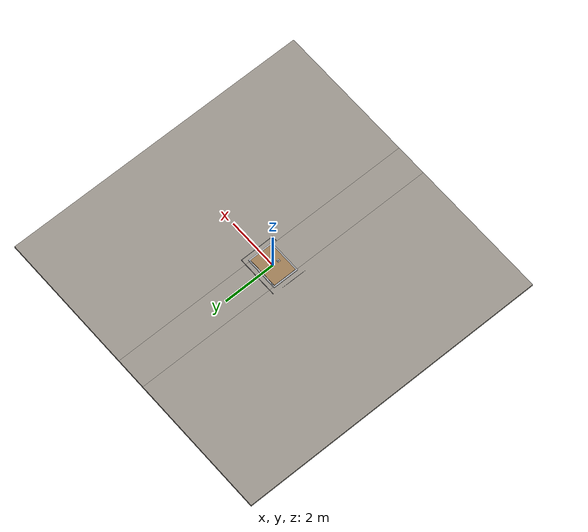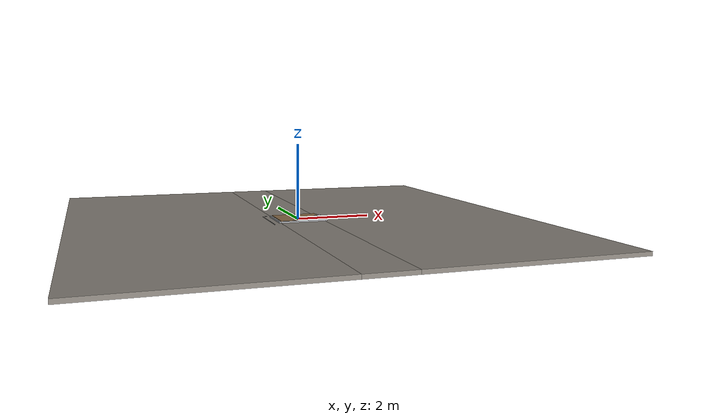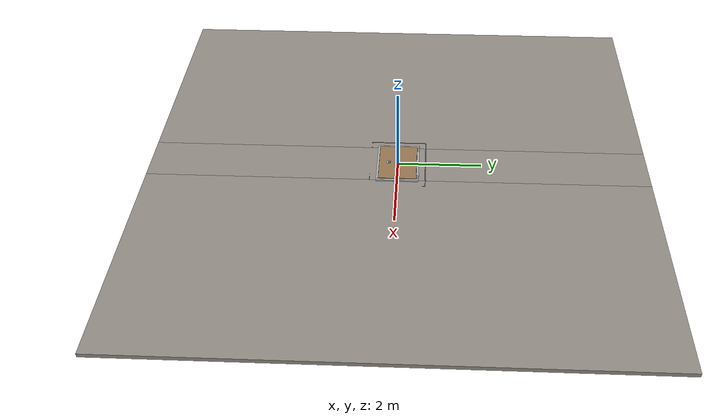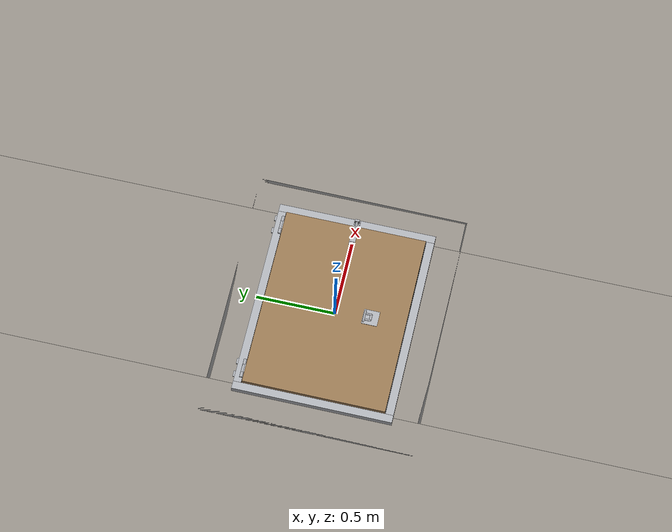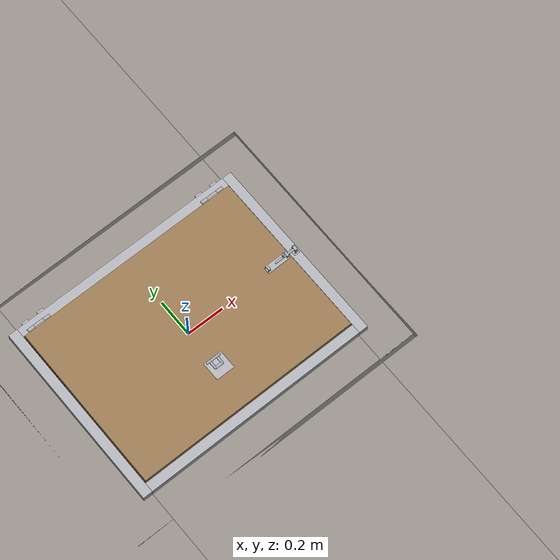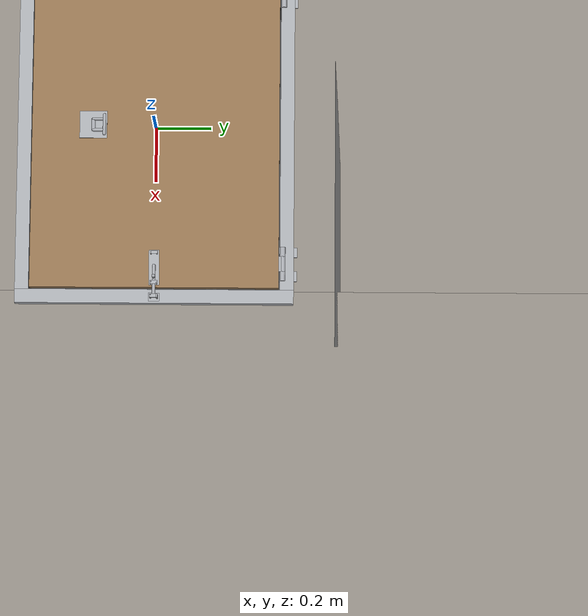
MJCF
<?xml version="1.0" ?>
<mujoco model="db0241_hatch_floor_full">
  <compiler angle="radian" meshdir="../../hardware" texturedir="../../textures" autolimits="true" inertiafromgeom="false"/>
  <option timestep="0.002" integrator="implicitfast" cone="elliptic" impratio="10" noslip_iterations="3">
    <flag multiccd="enable"/>
  </option>
  <size memory="16M"/>
  <default>
    <geom condim="4" solref="0.005 1" solimp="0.95 0.99 0.001"/>
    <joint solreflimit="0.005 1" solimplimit="0.95 0.99 0.001"/>
    <tendon solreflimit="0.005 1"/>
    <equality solref="0.002 1"/>
  </default>
  <visual>
    <headlight ambient="0.4 0.4 0.4" diffuse="0.7 0.7 0.7" specular="0.2 0.2 0.2"/>
    <quality shadowsize="4096"/>
    <map znear="0.01" zfar="60"/>
  </visual>
  <asset>
    <material name="mat_floor" rgba="0.55 0.53 0.5 1" specular="0.2" shininess="0.15" reflectance="0"/>
    <material name="mat_wall" rgba="0.78 0.76 0.7 1" specular="0.2" shininess="0.1" reflectance="0"/>
    <material name="mat_pit" rgba="0.3 0.3 0.3 1" specular="0.2" shininess="0.1" reflectance="0"/>
    <material name="mat_frame" rgba="0.65 0.66 0.68 1" specular="0.74" shininess="0.5" reflectance="0.36"/>
    <material name="mat_leaf" rgba="0.566 0.446 0.306 1" specular="0.2" shininess="0.5" reflectance="0"/>
    <material name="mat_hinge" rgba="0.65 0.66 0.68 1" specular="0.74" shininess="0.5" reflectance="0.36"/>
    <material name="mat_op_steel_galvanized" rgba="0.65 0.66 0.68 1" specular="0.74" shininess="0.5" reflectance="0.36"/>
    <material name="mat_strut" rgba="0.75 0.76 0.77 1" specular="0.8" shininess="0.65" reflectance="0.4"/>
    <material name="mat_bolt" rgba="0.65 0.66 0.68 1" specular="0.74" shininess="0.5" reflectance="0.36"/>
    <texture name="skybox" type="skybox" builtin="gradient" rgb1="0.6 0.7 0.85" rgb2="0.9 0.92 0.95" width="256" height="256"/>
  </asset>
  <worldbody>
    <light name="sun" pos="1.5 -2.5 4" dir="-0.3 0.5 -0.8" directional="true" diffuse="0.8 0.8 0.8" specular="0.3 0.3 0.3" castshadow="true"/>
    <light name="fill" pos="-1.5 2.5 3" dir="0.3 -0.5 -0.7" directional="true" diffuse="0.35 0.35 0.4" castshadow="false"/>
    <camera name="robot_view" pos="0 -1.875 0.98" xyaxes="1 0 0 0 0.26963 0.962964" fovy="52"/>
    <camera name="far_view" pos="0 1.875 0.98" xyaxes="-1 0 0 0 -0.26963 0.962964" fovy="52"/>
    <camera name="iso" pos="1.425 -1.575 1.28" xyaxes="0.741536 0.670913 0 -0.242917 0.268487 0.932151" fovy="46"/>
    <camera name="detail_handle" pos="0.35 -0.7375 0.912" xyaxes="0.843661 0.536875 0 -0.426006 0.669439 0.608581" fovy="38"/>
    <geom name="floor_a" type="box" size="2.6975 6 0.05" pos="-3.3025 0 -0.05" material="mat_floor" group="0" contype="1" conaffinity="1" friction="0.6 0.005 0.0001" density="2400"/>
    <geom name="floor_b" type="box" size="2.6975 6 0.05" pos="3.3025 0 -0.05" material="mat_floor" group="0" contype="1" conaffinity="1" friction="0.6 0.005 0.0001" density="2400"/>
    <geom name="floor_c" type="box" size="0.605 2.7725 0.05" pos="0 -3.2275 -0.05" material="mat_floor" group="0" contype="1" conaffinity="1" friction="0.6 0.005 0.0001" density="2400"/>
    <geom name="floor_d" type="box" size="0.605 2.7725 0.05" pos="0 3.2275 -0.05" material="mat_floor" group="0" contype="1" conaffinity="1" friction="0.6 0.005 0.0001" density="2400"/>
    <geom name="pit_floor" type="box" size="0.805 0.655 0.02" pos="0 0 -1.5" material="mat_pit" group="0" contype="1" conaffinity="1" friction="0.6 0.005 0.0001" density="2400"/>
    <geom name="pit_wall_l" type="box" size="0.01 0.675 0.75" pos="-0.815 0 -0.75" material="mat_pit" group="0" contype="1" conaffinity="1" friction="0.6 0.005 0.0001" density="2400"/>
    <geom name="pit_wall_r" type="box" size="0.01 0.675 0.75" pos="0.815 0 -0.75" material="mat_pit" group="0" contype="1" conaffinity="1" friction="0.6 0.005 0.0001" density="2400"/>
    <geom name="pit_wall_n" type="box" size="0.805 0.01 0.75" pos="0 -0.665 -0.75" material="mat_pit" group="0" contype="1" conaffinity="1" friction="0.6 0.005 0.0001" density="2400"/>
    <geom name="pit_wall_f" type="box" size="0.805 0.01 0.75" pos="0 0.665 -0.75" material="mat_pit" group="0" contype="1" conaffinity="1" friction="0.6 0.005 0.0001" density="2400"/>
    <geom name="curb_l" type="box" size="0.025 0.505 0.02" pos="-0.63 0 0.02" material="mat_frame" group="0" contype="1" conaffinity="1" friction="0.6 0.005 0.0001" density="7850"/>
    <geom name="curb_r" type="box" size="0.025 0.505 0.02" pos="0.63 0 0.02" material="mat_frame" group="0" contype="1" conaffinity="1" friction="0.6 0.005 0.0001" density="7850"/>
    <geom name="curb_n" type="box" size="0.605 0.025 0.02" pos="0 -0.48 0.02" material="mat_frame" group="0" contype="1" conaffinity="1" friction="0.6 0.005 0.0001" density="7850"/>
    <geom name="curb_f" type="box" size="0.605 0.025 0.02" pos="0 0.48 0.02" material="mat_frame" group="0" contype="1" conaffinity="1" friction="0.6 0.005 0.0001" density="7850"/>
    <geom name="hatch_hinge_0_curb_n" type="cylinder" size="0.01 0.018" pos="-0.554 0.465 0.04" quat="0.707107 0 0.707107 0" material="mat_hinge" group="1" contype="0" conaffinity="0" density="7850"/>
    <geom name="hatch_hinge_0_curb_strap_n" type="box" size="0.018 0.032 0.005" pos="-0.554 0.485 0.03" material="mat_hinge" group="1" contype="0" conaffinity="0" density="7850"/>
    <geom name="hatch_hinge_0_curb_p" type="cylinder" size="0.01 0.018" pos="-0.466 0.465 0.04" quat="0.707107 0 0.707107 0" material="mat_hinge" group="1" contype="0" conaffinity="0" density="7850"/>
    <geom name="hatch_hinge_0_curb_strap_p" type="box" size="0.018 0.032 0.005" pos="-0.466 0.485 0.03" material="mat_hinge" group="1" contype="0" conaffinity="0" density="7850"/>
    <geom name="hatch_hinge_1_curb_n" type="cylinder" size="0.01 0.018" pos="0.466 0.465 0.04" quat="0.707107 0 0.707107 0" material="mat_hinge" group="1" contype="0" conaffinity="0" density="7850"/>
    <geom name="hatch_hinge_1_curb_strap_n" type="box" size="0.018 0.032 0.005" pos="0.466 0.485 0.03" material="mat_hinge" group="1" contype="0" conaffinity="0" density="7850"/>
    <geom name="hatch_hinge_1_curb_p" type="cylinder" size="0.01 0.018" pos="0.554 0.465 0.04" quat="0.707107 0 0.707107 0" material="mat_hinge" group="1" contype="0" conaffinity="0" density="7850"/>
    <geom name="hatch_hinge_1_curb_strap_p" type="box" size="0.018 0.032 0.005" pos="0.554 0.485 0.03" material="mat_hinge" group="1" contype="0" conaffinity="0" density="7850"/>
    <geom name="hatch_bolt_keeper_leg_n" type="box" size="0.007 0.0025 0.02" pos="0.633 -0.0115 0.06" material="mat_bolt" group="0" contype="1" conaffinity="1" friction="0.6 0.005 0.0001" density="7800"/>
    <geom name="hatch_bolt_keeper_leg_p" type="box" size="0.007 0.0025 0.02" pos="0.633 0.0115 0.06" material="mat_bolt" group="0" contype="1" conaffinity="1" friction="0.6 0.005 0.0001" density="7800"/>
    <geom name="hatch_bolt_keeper_bridge" type="box" size="0.007 0.014 0.0025" pos="0.633 0 0.0775" material="mat_bolt" group="0" contype="1" conaffinity="1" friction="0.6 0.005 0.0001" density="7800"/>
    <geom name="hatch_bolt_keeper_base" type="box" size="0.015 0.02 0.001" pos="0.633 0 0.041" material="mat_bolt" group="1" contype="0" conaffinity="0" density="7800"/>
    <site name="approach_point" pos="0 -1.5 0" quat="1 0 0 0" size="0.05" rgba="0.2 0.9 0.2 0.5" group="4"/>
    <site name="goal_point" pos="0 0 -1" quat="1 0 0 0" size="0.05" rgba="0.2 0.9 0.2 0.5" group="4"/>
    <site name="door_plane_center" pos="0 0 0" quat="1 0 0 0" size="0.02" rgba="0.2 0.9 0.2 0.5" group="4"/>
    <body name="hatch" pos="0 0.455 0.04">
      <inertial pos="0.022174 -0.444465 -0.005126" mass="27.76796" quat="0.999846 -0.004584 0.010908 0.012967" diaginertia="1.917119856 3.608800621 5.464636565"/>
      <joint name="hatch_hinge" type="hinge" axis="-1 0 0" pos="0 0.01 0" limited="true" range="0 1.745329" damping="30.837043" frictionloss="0.516228" stiffness="12.375" springref="-3.333333" armature="0.02"/>
      <geom name="hatch_slab" type="box" size="0.6 0.451 0.016" pos="0 -0.455 0" material="mat_leaf" group="0" contype="1" conaffinity="1" friction="0.6 0.005 0.0001" density="1"/>
      <geom name="hatch_hinge_0" type="cylinder" size="0.01 0.028" pos="-0.51 0.01 0" quat="0.707107 0 0.707107 0" material="mat_hinge" group="1" contype="0" conaffinity="0" density="7850"/>
      <geom name="hatch_hinge_0_strap" type="box" size="0.028 0.023 0.003" pos="-0.51 -0.007 0.005" material="mat_hinge" group="1" contype="0" conaffinity="0" density="7850"/>
      <geom name="hatch_hinge_1" type="cylinder" size="0.01 0.028" pos="0.51 0.01 0" quat="0.707107 0 0.707107 0" material="mat_hinge" group="1" contype="0" conaffinity="0" density="7850"/>
      <geom name="hatch_hinge_1_strap" type="box" size="0.028 0.023 0.003" pos="0.51 -0.007 0.005" material="mat_hinge" group="1" contype="0" conaffinity="0" density="7850"/>
      <geom name="ring_recess" type="box" size="0.05 0.05 0.001" pos="0 -0.6825 0.017" material="mat_op_steel_galvanized" group="1" contype="0" conaffinity="0" density="7800"/>
      <geom name="gas_strut" type="cylinder" size="0.01 0.2" pos="0.55 -0.364 -0.15" quat="0.316228 -0.948683 0 0" material="mat_strut" group="1" contype="0" conaffinity="0" density="7900"/>
      <geom name="hatch_bolt_plate" type="box" size="0.064 0.019 0.001" pos="0.528 -0.455 0.017" material="mat_bolt" group="1" contype="0" conaffinity="0" density="7800"/>
      <geom name="hatch_bolt_guide_0_leg_n" type="box" size="0.006 0.002 0.0115" pos="0.584 -0.466 0.0275" material="mat_bolt" group="1" contype="0" conaffinity="0" density="7800"/>
      <geom name="hatch_bolt_guide_0_leg_p" type="box" size="0.006 0.002 0.0115" pos="0.584 -0.444 0.0275" material="mat_bolt" group="1" contype="0" conaffinity="0" density="7800"/>
      <geom name="hatch_bolt_guide_0_bridge" type="box" size="0.006 0.013 0.002" pos="0.584 -0.455 0.037" material="mat_bolt" group="1" contype="0" conaffinity="0" density="7800"/>
      <geom name="hatch_bolt_guide_1_leg_n" type="box" size="0.006 0.002 0.0115" pos="0.474 -0.466 0.0275" material="mat_bolt" group="1" contype="0" conaffinity="0" density="7800"/>
      <geom name="hatch_bolt_guide_1_leg_p" type="box" size="0.006 0.002 0.0115" pos="0.474 -0.444 0.0275" material="mat_bolt" group="1" contype="0" conaffinity="0" density="7800"/>
      <geom name="hatch_bolt_guide_1_bridge" type="box" size="0.006 0.013 0.002" pos="0.474 -0.455 0.037" material="mat_bolt" group="1" contype="0" conaffinity="0" density="7800"/>
      <body name="ring" pos="0 -0.6825 0.016">
        <inertial pos="0 0.019982 0.002997" mass="0.2225" quat="-0.058307 0.998299 0 0" diaginertia="0.000076951 0.000083485 0.000154999"/>
        <joint name="ring_hinge" type="hinge" axis="1 0 0" limited="true" range="0 1.392122" damping="0.003476" armature="0.0001"/>
        <geom name="ring_geom" type="capsule" size="0.006 0.035" pos="0 0.04 0.006" quat="0.707107 0 0.707107 0" material="mat_op_steel_galvanized" group="0" contype="1" conaffinity="1" friction="0.6 0.005 0.0001" density="7800"/>
        <geom name="ring_knuckle" type="cylinder" size="0.008 0.022" pos="0 0 0" quat="0.707107 0 0.707107 0" material="mat_op_steel_galvanized" group="1" contype="0" conaffinity="0" density="7800"/>
        <geom name="ring_arm_n" type="capsule" size="0.006 0.02" pos="-0.02 0.02 0.003" quat="0.707107 -0.707107 0 0" material="mat_op_steel_galvanized" group="1" contype="0" conaffinity="0" density="7800"/>
        <geom name="ring_arm_p" type="capsule" size="0.006 0.02" pos="0.02 0.02 0.003" quat="0.707107 -0.707107 0 0" material="mat_op_steel_galvanized" group="1" contype="0" conaffinity="0" density="7800"/>
        <site name="grip_ring" pos="0 0.04 0.006" quat="1 0 0 0" size="0.01" rgba="0.2 0.9 0.2 0.5" group="4"/>
      </body>
      <body name="hatch_bolt" pos="0.6 -0.455 0.026">
        <inertial pos="-0.026255 0 0.004246" mass="0.12954" quat="0.706926 0.706926 0.016003 -0.016003" diaginertia="0.000013355 0.000119753 0.0001309"/>
        <joint name="hatch_bolt_slide" type="slide" axis="-1 0 0" limited="true" range="0 0.04" damping="1" frictionloss="1" armature="0.1"/>
        <geom name="hatch_bolt_rod" type="capsule" size="0.006 0.054" pos="-0.024 0 0" quat="0.707107 0 0.707107 0" material="mat_bolt" group="0" contype="1" conaffinity="1" friction="0.6 0.005 0.0001" density="7850"/>
        <geom name="hatch_bolt_knob" type="capsule" size="0.005 0.01" pos="-0.035 0 0.015" material="mat_bolt" group="0" contype="1" conaffinity="1" friction="0.6 0.005 0.0001" density="7850"/>
        <geom name="hatch_bolt_knob_end" type="sphere" size="0.00675" pos="-0.035 0 0.03" material="mat_bolt" group="1" contype="0" conaffinity="0" density="7850"/>
        <site name="hatch_bolt_grip" pos="-0.035 0 0.034" quat="1 0 0 0" size="0.012" rgba="0.2 0.9 0.2 0.5" group="4"/>
      </body>
    </body>
  </worldbody>
  <sensor>
    <jointpos name="hatch_hinge_pos" joint="hatch_hinge"/>
    <jointvel name="hatch_hinge_vel" joint="hatch_hinge"/>
    <jointpos name="ring_hinge_pos" joint="ring_hinge"/>
    <jointvel name="ring_hinge_vel" joint="ring_hinge"/>
    <jointpos name="hatch_bolt_slide_pos" joint="hatch_bolt_slide"/>
    <jointvel name="hatch_bolt_slide_vel" joint="hatch_bolt_slide"/>
  </sensor>
</mujoco>
